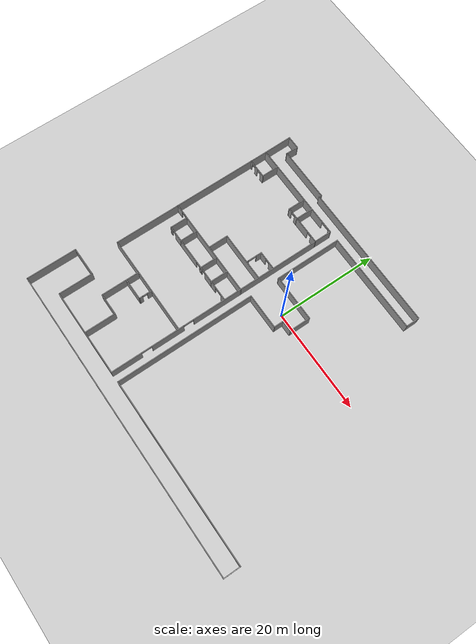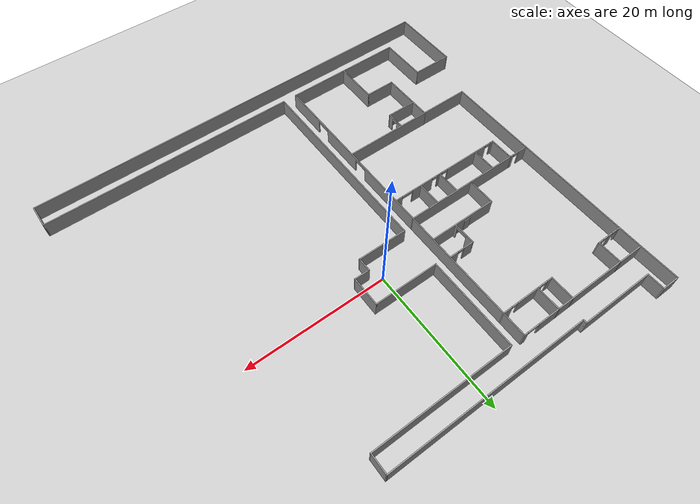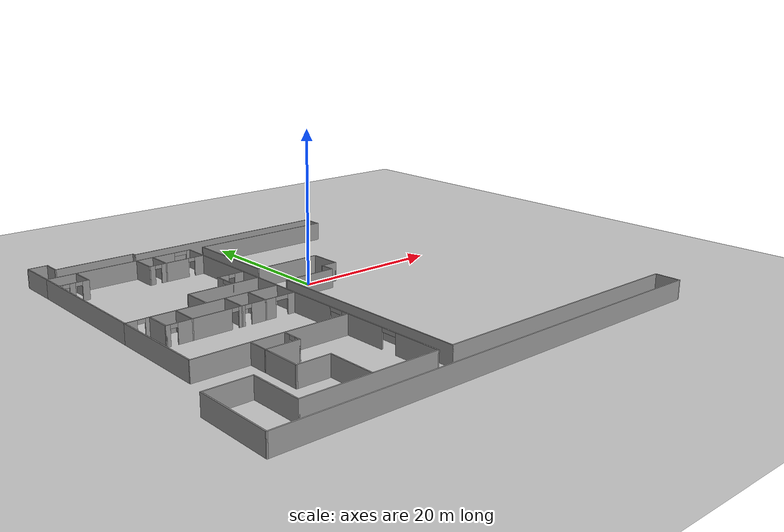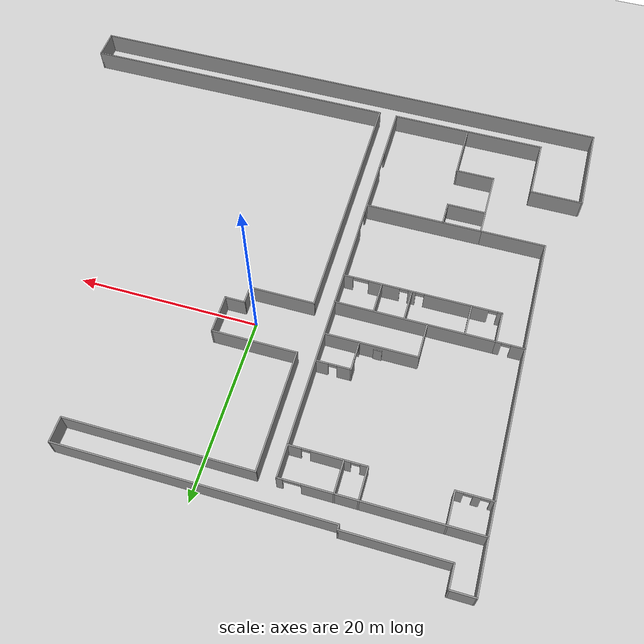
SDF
<sdf version="1.6">
 <world name="default">
  <light name="sun" type="directional">
   <pose>0 0 10 0 -0 0</pose>
   <diffuse>0.8 0.8 0.8 1</diffuse>
   <specular>0.2 0.2 0.2 1</specular>
   <attenuation>
    <range>1000</range>
    <constant>0.9</constant>
    <linear>0.01</linear>
    <quadratic>0.001</quadratic>
   </attenuation>
   <direction>-0.5 0.1 -0.9</direction>
  </light>
  <include><uri>model://ground_plane</uri></include>
  <include><uri>model://EDML</uri><name>EDML</name><pose>0 -6 0 0 0 0</pose></include>
 </world>
</sdf>

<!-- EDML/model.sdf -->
<sdf version='1.6'>
  <model name='EDML'>
    <pose frame=''>1.09948 8.70405 0 0 -0 0</pose>
    <link name='Door_14'>
      <collision name='Door_14_Collision'>
        <geometry>
          <box>
            <size>0.9 0.17 2</size>
          </box>
        </geometry>
        <pose frame=''>0 0 1 0 -0 0</pose>
      </collision>
      <visual name='Door_14_Visual'>
        <pose frame=''>0 0 1 0 -0 0</pose>
        <geometry>
          <box>
            <size>0.9 0.17 2</size>
          </box>
        </geometry>
        <material>
          <script>
            <uri>file://media/materials/scripts/gazebo.material</uri>
            <name>Gazebo/Grey</name>
          </script>
        </material>
      </visual>
      <pose frame=''>-13.2894 6.35027 0 0 -0 0</pose>
    </link>
    <link name='Wall_0'>
      <collision name='Wall_0_Collision'>
        <geometry>
          <box>
            <size>61.603 0.15 2.5</size>
          </box>
        </geometry>
        <pose frame=''>0 0 1.25 0 -0 0</pose>
      </collision>
      <visual name='Wall_0_Visual'>
        <pose frame=''>0 0 1.25 0 -0 0</pose>
        <geometry>
          <box>
            <size>61.603 0.15 2.5</size>
          </box>
        </geometry>
        <material>
          <script>
            <uri>file://media/materials/scripts/gazebo.material</uri>
            <name>Gazebo/Grey</name>
          </script>
          <ambient>1 1 1 1</ambient>
        </material>
      </visual>
      <pose frame=''>1.5e-05 -27.6701 0 0 -0 0</pose>
    </link>
    <link name='Wall_10'>
      <pose frame=''>-7.59652 -1.15055 0 0 -0 1.5708</pose>
      <visual name='Wall_10_Visual_0'>
        <pose frame=''>-20.3098 0 1.25 0 -0 0</pose>
        <geometry>
          <box>
            <size>6.1505 0.15 2.5</size>
          </box>
        </geometry>
        <material>
          <script>
            <uri>file://media/materials/scripts/gazebo.material</uri>
            <name>Gazebo/Grey</name>
          </script>
          <ambient>1 1 1 1</ambient>
        </material>
      </visual>
      <collision name='Wall_10_Collision_0'>
        <geometry>
          <box>
            <size>6.1505 0.15 2.5</size>
          </box>
        </geometry>
        <pose frame=''>-20.3098 0 1.25 0 -0 0</pose>
      </collision>
      <visual name='Wall_10_Visual_1'>
        <pose frame=''>-11.8405 0 1.25 0 -0 0</pose>
        <geometry>
          <box>
            <size>6.588 0.15 2.5</size>
          </box>
        </geometry>
        <material>
          <script>
            <uri>file://media/materials/scripts/gazebo.material</uri>
            <name>Gazebo/Grey</name>
          </script>
          <ambient>1 1 1 1</ambient>
        </material>
      </visual>
      <collision name='Wall_10_Collision_1'>
        <geometry>
          <box>
            <size>6.588 0.15 2.5</size>
          </box>
        </geometry>
        <pose frame=''>-11.8405 0 1.25 0 -0 0</pose>
      </collision>
      <visual name='Wall_10_Visual_2'>
        <pose frame=''>8.42925 0 1.25 0 -0 0</pose>
        <geometry>
          <box>
            <size>29.9115 0.15 2.5</size>
          </box>
        </geometry>
        <material>
          <script>
            <uri>file://media/materials/scripts/gazebo.material</uri>
            <name>Gazebo/Grey</name>
          </script>
          <ambient>1 1 1 1</ambient>
        </material>
      </visual>
      <collision name='Wall_10_Collision_2'>
        <geometry>
          <box>
            <size>29.9115 0.15 2.5</size>
          </box>
        </geometry>
        <pose frame=''>8.42925 0 1.25 0 -0 0</pose>
      </collision>
      <visual name='Wall_10_Visual_3'>
        <pose frame=''>-16.1845 0 2.25 0 -0 0</pose>
        <geometry>
          <box>
            <size>2.1 0.15 0.5</size>
          </box>
        </geometry>
        <material>
          <script>
            <uri>file://media/materials/scripts/gazebo.material</uri>
            <name>Gazebo/Grey</name>
          </script>
          <ambient>1 1 1 1</ambient>
        </material>
      </visual>
      <collision name='Wall_10_Collision_3'>
        <geometry>
          <box>
            <size>2.1 0.15 0.5</size>
          </box>
        </geometry>
        <pose frame=''>-16.1845 0 2.25 0 -0 0</pose>
      </collision>
      <visual name='Wall_10_Visual_4'>
        <pose frame=''>-7.53651 0 2.25 0 -0 0</pose>
        <geometry>
          <box>
            <size>2.02 0.15 0.5</size>
          </box>
        </geometry>
        <material>
          <script>
            <uri>file://media/materials/scripts/gazebo.material</uri>
            <name>Gazebo/Grey</name>
          </script>
          <ambient>1 1 1 1</ambient>
        </material>
      </visual>
      <collision name='Wall_10_Collision_4'>
        <geometry>
          <box>
            <size>2.02 0.15 0.5</size>
          </box>
        </geometry>
        <pose frame=''>-7.53651 0 2.25 0 -0 0</pose>
      </collision>
    </link>
    <link name='Wall_103'>
      <collision name='Wall_103_Collision'>
        <geometry>
          <box>
            <size>3.539 0.15 2.5</size>
          </box>
        </geometry>
        <pose frame=''>0 0 1.25 0 -0 0</pose>
      </collision>
      <visual name='Wall_103_Visual'>
        <pose frame=''>0 0 1.25 0 -0 0</pose>
        <geometry>
          <box>
            <size>3.539 0.15 2.5</size>
          </box>
        </geometry>
        <material>
          <script>
            <uri>file://media/materials/scripts/gazebo.material</uri>
            <name>Gazebo/Grey</name>
          </script>
          <ambient>1 1 1 1</ambient>
        </material>
      </visual>
      <pose frame=''>-13.181 20.4654 0 0 0 -1.5708</pose>
    </link>
    <link name='Wall_105'>
      <pose frame=''>-11.568 18.7709 0 0 -0 3.14159</pose>
      <visual name='Wall_105_Visual_0'>
        <pose frame=''>-3.3243 0 1.25 0 -0 0</pose>
        <geometry>
          <box>
            <size>1.44441 0.15 2.5</size>
          </box>
        </geometry>
        <material>
          <script>
            <uri>file://media/materials/scripts/gazebo.material</uri>
            <name>Gazebo/Grey</name>
          </script>
          <ambient>1 1 1 1</ambient>
        </material>
      </visual>
      <collision name='Wall_105_Collision_0'>
        <geometry>
          <box>
            <size>1.44441 0.15 2.5</size>
          </box>
        </geometry>
        <pose frame=''>-3.3243 0 1.25 0 -0 0</pose>
      </collision>
      <visual name='Wall_105_Visual_1'>
        <pose frame=''>0.305332 0 1.25 0 -0 0</pose>
        <geometry>
          <box>
            <size>4.01485 0.15 2.5</size>
          </box>
        </geometry>
        <material>
          <script>
            <uri>file://media/materials/scripts/gazebo.material</uri>
            <name>Gazebo/Grey</name>
          </script>
          <ambient>1 1 1 1</ambient>
        </material>
      </visual>
      <collision name='Wall_105_Collision_1'>
        <geometry>
          <box>
            <size>4.01485 0.15 2.5</size>
          </box>
        </geometry>
        <pose frame=''>0.305332 0 1.25 0 -0 0</pose>
      </collision>
      <visual name='Wall_105_Visual_2'>
        <pose frame=''>3.62963 0 1.25 0 -0 0</pose>
        <geometry>
          <box>
            <size>0.833746 0.15 2.5</size>
          </box>
        </geometry>
        <material>
          <script>
            <uri>file://media/materials/scripts/gazebo.material</uri>
            <name>Gazebo/Grey</name>
          </script>
          <ambient>1 1 1 1</ambient>
        </material>
      </visual>
      <collision name='Wall_105_Collision_2'>
        <geometry>
          <box>
            <size>0.833746 0.15 2.5</size>
          </box>
        </geometry>
        <pose frame=''>3.62963 0 1.25 0 -0 0</pose>
      </collision>
      <visual name='Wall_105_Visual_3'>
        <pose frame=''>-2.15209 0 2.25 0 -0 0</pose>
        <geometry>
          <box>
            <size>0.9 0.15 0.5</size>
          </box>
        </geometry>
        <material>
          <script>
            <uri>file://media/materials/scripts/gazebo.material</uri>
            <name>Gazebo/Grey</name>
          </script>
          <ambient>1 1 1 1</ambient>
        </material>
      </visual>
      <collision name='Wall_105_Collision_3'>
        <geometry>
          <box>
            <size>0.9 0.15 0.5</size>
          </box>
        </geometry>
        <pose frame=''>-2.15209 0 2.25 0 -0 0</pose>
      </collision>
      <visual name='Wall_105_Visual_4'>
        <pose frame=''>2.76275 0 2.25 0 -0 0</pose>
        <geometry>
          <box>
            <size>0.9 0.15 0.5</size>
          </box>
        </geometry>
        <material>
          <script>
            <uri>file://media/materials/scripts/gazebo.material</uri>
            <name>Gazebo/Grey</name>
          </script>
          <ambient>1 1 1 1</ambient>
        </material>
      </visual>
      <collision name='Wall_105_Collision_4'>
        <geometry>
          <box>
            <size>0.9 0.15 0.5</size>
          </box>
        </geometry>
        <pose frame=''>2.76275 0 2.25 0 -0 0</pose>
      </collision>
    </link>
    <link name='Wall_13'>
      <pose frame=''>-17.6295 22.1597 0 0 -0 3.14157</pose>
      <visual name='Wall_13_Visual_0'>
        <pose frame=''>-9.78149 0 1.25 0 -0 0</pose>
        <geometry>
          <box>
            <size>0.652987 0.15 2.5</size>
          </box>
        </geometry>
        <material>
          <script>
            <uri>file://media/materials/scripts/gazebo.material</uri>
            <name>Gazebo/Grey</name>
          </script>
          <ambient>1 1 1 1</ambient>
        </material>
      </visual>
      <collision name='Wall_13_Collision_0'>
        <geometry>
          <box>
            <size>0.652987 0.15 2.5</size>
          </box>
        </geometry>
        <pose frame=''>-9.78149 0 1.25 0 -0 0</pose>
      </collision>
      <visual name='Wall_13_Visual_1'>
        <pose frame=''>1.23349 0 1.25 0 -0 0</pose>
        <geometry>
          <box>
            <size>17.749 0.15 2.5</size>
          </box>
        </geometry>
        <material>
          <script>
            <uri>file://media/materials/scripts/gazebo.material</uri>
            <name>Gazebo/Grey</name>
          </script>
          <ambient>1 1 1 1</ambient>
        </material>
      </visual>
      <collision name='Wall_13_Collision_1'>
        <geometry>
          <box>
            <size>17.749 0.15 2.5</size>
          </box>
        </geometry>
        <pose frame=''>1.23349 0 1.25 0 -0 0</pose>
      </collision>
      <visual name='Wall_13_Visual_2'>
        <pose frame=''>-8.548 0 2.25 0 -0 0</pose>
        <geometry>
          <box>
            <size>1.814 0.15 0.5</size>
          </box>
        </geometry>
        <material>
          <script>
            <uri>file://media/materials/scripts/gazebo.material</uri>
            <name>Gazebo/Grey</name>
          </script>
          <ambient>1 1 1 1</ambient>
        </material>
      </visual>
      <collision name='Wall_13_Collision_2'>
        <geometry>
          <box>
            <size>1.814 0.15 0.5</size>
          </box>
        </geometry>
        <pose frame=''>-8.548 0 2.25 0 -0 0</pose>
      </collision>
    </link>
    <link name='Wall_144'>
      <collision name='Wall_144_Collision'>
        <geometry>
          <box>
            <size>3.539 0.15 2.5</size>
          </box>
        </geometry>
        <pose frame=''>0 0 1.25 0 -0 0</pose>
      </collision>
      <visual name='Wall_144_Visual'>
        <pose frame=''>0 0 1.25 0 -0 0</pose>
        <geometry>
          <box>
            <size>3.539 0.15 2.5</size>
          </box>
        </geometry>
        <material>
          <script>
            <uri>file://media/materials/scripts/gazebo.material</uri>
            <name>Gazebo/Grey</name>
          </script>
          <ambient>1 1 1 1</ambient>
        </material>
      </visual>
      <pose frame=''>-23.8745 20.4654 0 0 0 -1.5708</pose>
    </link>
    <link name='Wall_146'>
      <collision name='Wall_146_Collision'>
        <geometry>
          <box>
            <size>19.9666 0.15 2.5</size>
          </box>
        </geometry>
        <pose frame=''>0 0 1.25 0 -0 0</pose>
      </collision>
      <visual name='Wall_146_Visual'>
        <pose frame=''>0 0 1.25 0 -0 0</pose>
        <geometry>
          <box>
            <size>19.9666 0.15 2.5</size>
          </box>
        </geometry>
        <material>
          <script>
            <uri>file://media/materials/scripts/gazebo.material</uri>
            <name>Gazebo/Grey</name>
          </script>
          <ambient>1 1 1 1</ambient>
        </material>
      </visual>
      <pose frame=''>-27.6625 12.2514 0 0 -0 1.5708</pose>
    </link>
    <link name='Wall_148'>
      <collision name='Wall_148_Collision'>
        <geometry>
          <box>
            <size>9.993 0.15 2.5</size>
          </box>
        </geometry>
        <pose frame=''>0 0 1.25 0 -0 0</pose>
      </collision>
      <visual name='Wall_148_Visual'>
        <pose frame=''>0 0 1.25 0 -0 0</pose>
        <geometry>
          <box>
            <size>9.993 0.15 2.5</size>
          </box>
        </geometry>
        <material>
          <script>
            <uri>file://media/materials/scripts/gazebo.material</uri>
            <name>Gazebo/Grey</name>
          </script>
          <ambient>1 1 1 1</ambient>
        </material>
      </visual>
      <pose frame=''>-12.566 6.25695 0 0 -0 3.14159</pose>
    </link>
    <link name='Wall_150'>
      <collision name='Wall_150_Collision'>
        <geometry>
          <box>
            <size>4 0.15 2.5</size>
          </box>
        </geometry>
        <pose frame=''>0 0 1.25 0 -0 0</pose>
      </collision>
      <visual name='Wall_150_Visual'>
        <pose frame=''>0 0 1.25 0 -0 0</pose>
        <geometry>
          <box>
            <size>4 0.15 2.5</size>
          </box>
        </geometry>
        <material>
          <script>
            <uri>file://media/materials/scripts/gazebo.material</uri>
            <name>Gazebo/Grey</name>
          </script>
          <ambient>1 1 1 1</ambient>
        </material>
      </visual>
      <pose frame=''>-17.4875 4.33195 0 0 0 -1.5708</pose>
    </link>
    <link name='Wall_152'>
      <pose frame=''>-11.3135 7.85145 0 0 -0 1.5708</pose>
      <visual name='Wall_152_Visual_0'>
        <pose frame=''>-1.437 0 1.25 0 -0 0</pose>
        <geometry>
          <box>
            <size>0.464999 0.15 2.5</size>
          </box>
        </geometry>
        <material>
          <script>
            <uri>file://media/materials/scripts/gazebo.material</uri>
            <name>Gazebo/Grey</name>
          </script>
          <ambient>1 1 1 1</ambient>
        </material>
      </visual>
      <collision name='Wall_152_Collision_0'>
        <geometry>
          <box>
            <size>0.464999 0.15 2.5</size>
          </box>
        </geometry>
        <pose frame=''>-1.437 0 1.25 0 -0 0</pose>
      </collision>
      <visual name='Wall_152_Visual_1'>
        <pose frame=''>1.06 0 1.25 0 -0 0</pose>
        <geometry>
          <box>
            <size>1.219 0.15 2.5</size>
          </box>
        </geometry>
        <material>
          <script>
            <uri>file://media/materials/scripts/gazebo.material</uri>
            <name>Gazebo/Grey</name>
          </script>
          <ambient>1 1 1 1</ambient>
        </material>
      </visual>
      <collision name='Wall_152_Collision_1'>
        <geometry>
          <box>
            <size>1.219 0.15 2.5</size>
          </box>
        </geometry>
        <pose frame=''>1.06 0 1.25 0 -0 0</pose>
      </collision>
      <visual name='Wall_152_Visual_2'>
        <pose frame=''>-0.377001 0 2.25 0 -0 0</pose>
        <geometry>
          <box>
            <size>1.655 0.15 0.5</size>
          </box>
        </geometry>
        <material>
          <script>
            <uri>file://media/materials/scripts/gazebo.material</uri>
            <name>Gazebo/Grey</name>
          </script>
          <ambient>1 1 1 1</ambient>
        </material>
      </visual>
      <collision name='Wall_152_Collision_2'>
        <geometry>
          <box>
            <size>1.655 0.15 0.5</size>
          </box>
        </geometry>
        <pose frame=''>-0.377001 0 2.25 0 -0 0</pose>
      </collision>
    </link>
    <link name='Wall_154'>
      <pose frame=''>-9.51348 9.44595 0 0 -0 0</pose>
      <visual name='Wall_154_Visual_0'>
        <pose frame=''>-1.09506 0 1.25 0 -0 0</pose>
        <geometry>
          <box>
            <size>1.55988 0.15 2.5</size>
          </box>
        </geometry>
        <material>
          <script>
            <uri>file://media/materials/scripts/gazebo.material</uri>
            <name>Gazebo/Grey</name>
          </script>
          <ambient>1 1 1 1</ambient>
        </material>
      </visual>
      <collision name='Wall_154_Collision_0'>
        <geometry>
          <box>
            <size>1.55988 0.15 2.5</size>
          </box>
        </geometry>
        <pose frame=''>-1.09506 0 1.25 0 -0 0</pose>
      </collision>
      <visual name='Wall_154_Visual_1'>
        <pose frame=''>1.22994 0 1.25 0 -0 0</pose>
        <geometry>
          <box>
            <size>1.29012 0.15 2.5</size>
          </box>
        </geometry>
        <material>
          <script>
            <uri>file://media/materials/scripts/gazebo.material</uri>
            <name>Gazebo/Grey</name>
          </script>
          <ambient>1 1 1 1</ambient>
        </material>
      </visual>
      <collision name='Wall_154_Collision_1'>
        <geometry>
          <box>
            <size>1.29012 0.15 2.5</size>
          </box>
        </geometry>
        <pose frame=''>1.22994 0 1.25 0 -0 0</pose>
      </collision>
      <visual name='Wall_154_Visual_2'>
        <pose frame=''>0.134882 0 2.25 0 -0 0</pose>
        <geometry>
          <box>
            <size>0.9 0.15 0.5</size>
          </box>
        </geometry>
        <material>
          <script>
            <uri>file://media/materials/scripts/gazebo.material</uri>
            <name>Gazebo/Grey</name>
          </script>
          <ambient>1 1 1 1</ambient>
        </material>
      </visual>
      <collision name='Wall_154_Collision_2'>
        <geometry>
          <box>
            <size>0.9 0.15 0.5</size>
          </box>
        </geometry>
        <pose frame=''>0.134882 0 2.25 0 -0 0</pose>
      </collision>
    </link>
    <link name='Wall_156'>
      <pose frame=''>-25.7685 18.7709 0 0 -0 3.14159</pose>
      <visual name='Wall_156_Visual_0'>
        <pose frame=''>-1.52296 0 1.25 0 -0 0</pose>
        <geometry>
          <box>
            <size>0.892081 0.15 2.5</size>
          </box>
        </geometry>
        <material>
          <script>
            <uri>file://media/materials/scripts/gazebo.material</uri>
            <name>Gazebo/Grey</name>
          </script>
          <ambient>1 1 1 1</ambient>
        </material>
      </visual>
      <collision name='Wall_156_Collision_0'>
        <geometry>
          <box>
            <size>0.892081 0.15 2.5</size>
          </box>
        </geometry>
        <pose frame=''>-1.52296 0 1.25 0 -0 0</pose>
      </collision>
      <visual name='Wall_156_Visual_1'>
        <pose frame=''>0.192223 0 1.25 0 -0 0</pose>
        <geometry>
          <box>
            <size>0.738283 0.15 2.5</size>
          </box>
        </geometry>
        <material>
          <script>
            <uri>file://media/materials/scripts/gazebo.material</uri>
            <name>Gazebo/Grey</name>
          </script>
          <ambient>1 1 1 1</ambient>
        </material>
      </visual>
      <collision name='Wall_156_Collision_1'>
        <geometry>
          <box>
            <size>0.738283 0.15 2.5</size>
          </box>
        </geometry>
        <pose frame=''>0.192223 0 1.25 0 -0 0</pose>
      </collision>
      <visual name='Wall_156_Visual_2'>
        <pose frame=''>1.71518 0 1.25 0 -0 0</pose>
        <geometry>
          <box>
            <size>0.507636 0.15 2.5</size>
          </box>
        </geometry>
        <material>
          <script>
            <uri>file://media/materials/scripts/gazebo.material</uri>
            <name>Gazebo/Grey</name>
          </script>
          <ambient>1 1 1 1</ambient>
        </material>
      </visual>
      <collision name='Wall_156_Collision_2'>
        <geometry>
          <box>
            <size>0.507636 0.15 2.5</size>
          </box>
        </geometry>
        <pose frame=''>1.71518 0 1.25 0 -0 0</pose>
      </collision>
      <visual name='Wall_156_Visual_3'>
        <pose frame=''>-0.626919 0 2.25 0 -0 0</pose>
        <geometry>
          <box>
            <size>0.9 0.15 0.5</size>
          </box>
        </geometry>
        <material>
          <script>
            <uri>file://media/materials/scripts/gazebo.material</uri>
            <name>Gazebo/Grey</name>
          </script>
          <ambient>1 1 1 1</ambient>
        </material>
      </visual>
      <collision name='Wall_156_Collision_3'>
        <geometry>
          <box>
            <size>0.9 0.15 0.5</size>
          </box>
        </geometry>
        <pose frame=''>-0.626919 0 2.25 0 -0 0</pose>
      </collision>
      <visual name='Wall_156_Visual_4'>
        <pose frame=''>1.01136 0 2.25 0 -0 0</pose>
        <geometry>
          <box>
            <size>0.9 0.15 0.5</size>
          </box>
        </geometry>
        <material>
          <script>
            <uri>file://media/materials/scripts/gazebo.material</uri>
            <name>Gazebo/Grey</name>
          </script>
          <ambient>1 1 1 1</ambient>
        </material>
      </visual>
      <collision name='Wall_156_Collision_4'>
        <geometry>
          <box>
            <size>0.9 0.15 0.5</size>
          </box>
        </geometry>
        <pose frame=''>1.01136 0 2.25 0 -0 0</pose>
      </collision>
    </link>
    <link name='Wall_160'>
      <collision name='Wall_160_Collision'>
        <geometry>
          <box>
            <size>9.23 0.15 2.5</size>
          </box>
        </geometry>
        <pose frame=''>0 0 1.25 0 -0 0</pose>
      </collision>
      <visual name='Wall_160_Visual'>
        <pose frame=''>0 0 1.25 0 -0 0</pose>
        <geometry>
          <box>
            <size>9.23 0.15 2.5</size>
          </box>
        </geometry>
        <material>
          <script>
            <uri>file://media/materials/scripts/gazebo.material</uri>
            <name>Gazebo/Grey</name>
          </script>
          <ambient>1 1 1 1</ambient>
        </material>
      </visual>
      <pose frame=''>-0.946484 9.13295 0 0 -0 0</pose>
    </link>
    <link name='Wall_161'>
      <collision name='Wall_161_Collision'>
        <geometry>
          <box>
            <size>4.282 0.15 2.5</size>
          </box>
        </geometry>
        <pose frame=''>0 0 1.25 0 -0 0</pose>
      </collision>
      <visual name='Wall_161_Visual'>
        <pose frame=''>0 0 1.25 0 -0 0</pose>
        <geometry>
          <box>
            <size>4.282 0.15 2.5</size>
          </box>
        </geometry>
        <material>
          <script>
            <uri>file://media/materials/scripts/gazebo.material</uri>
            <name>Gazebo/Grey</name>
          </script>
          <ambient>1 1 1 1</ambient>
        </material>
      </visual>
      <pose frame=''>3.59352 7.06695 0 0 0 -1.5708</pose>
    </link>
    <link name='Wall_162'>
      <collision name='Wall_162_Collision'>
        <geometry>
          <box>
            <size>2.258 0.15 2.5</size>
          </box>
        </geometry>
        <pose frame=''>0 0 1.25 0 -0 0</pose>
      </collision>
      <visual name='Wall_162_Visual'>
        <pose frame=''>0 0 1.25 0 -0 0</pose>
        <geometry>
          <box>
            <size>2.258 0.15 2.5</size>
          </box>
        </geometry>
        <material>
          <script>
            <uri>file://media/materials/scripts/gazebo.material</uri>
            <name>Gazebo/Grey</name>
          </script>
          <ambient>1 1 1 1</ambient>
        </material>
      </visual>
      <pose frame=''>2.53952 5.00095 0 0 -0 3.14159</pose>
    </link>
    <link name='Wall_163'>
      <collision name='Wall_163_Collision'>
        <geometry>
          <box>
            <size>2.019 0.15 2.5</size>
          </box>
        </geometry>
        <pose frame=''>0 0 1.25 0 -0 0</pose>
      </collision>
      <visual name='Wall_163_Visual'>
        <pose frame=''>0 0 1.25 0 -0 0</pose>
        <geometry>
          <box>
            <size>2.019 0.15 2.5</size>
          </box>
        </geometry>
        <material>
          <script>
            <uri>file://media/materials/scripts/gazebo.material</uri>
            <name>Gazebo/Grey</name>
          </script>
          <ambient>1 1 1 1</ambient>
        </material>
      </visual>
      <pose frame=''>1.48552 4.06645 0 0 0 -1.5708</pose>
    </link>
    <link name='Wall_164'>
      <collision name='Wall_164_Collision'>
        <geometry>
          <box>
            <size>7.177 0.15 2.5</size>
          </box>
        </geometry>
        <pose frame=''>0 0 1.25 0 -0 0</pose>
      </collision>
      <visual name='Wall_164_Visual'>
        <pose frame=''>0 0 1.25 0 -0 0</pose>
        <geometry>
          <box>
            <size>7.177 0.15 2.5</size>
          </box>
        </geometry>
        <material>
          <script>
            <uri>file://media/materials/scripts/gazebo.material</uri>
            <name>Gazebo/Grey</name>
          </script>
          <ambient>1 1 1 1</ambient>
        </material>
      </visual>
      <pose frame=''>-2.02798 3.13195 0 0 -0 3.14159</pose>
    </link>
    <link name='Wall_166'>
      <collision name='Wall_166_Collision'>
        <geometry>
          <box>
            <size>27.742 0.15 2.5</size>
          </box>
        </geometry>
        <pose frame=''>0 0 1.25 0 -0 0</pose>
      </collision>
      <visual name='Wall_166_Visual'>
        <pose frame=''>0 0 1.25 0 -0 0</pose>
        <geometry>
          <box>
            <size>27.742 0.15 2.5</size>
          </box>
        </geometry>
        <material>
          <script>
            <uri>file://media/materials/scripts/gazebo.material</uri>
            <name>Gazebo/Grey</name>
          </script>
          <ambient>1 1 1 1</ambient>
        </material>
      </visual>
      <pose frame=''>-5.54148 -10.6641 0 0 0 -1.5708</pose>
    </link>
    <link name='Wall_167'>
      <collision name='Wall_167_Collision'>
        <geometry>
          <box>
            <size>36.418 0.15 2.5</size>
          </box>
        </geometry>
        <pose frame=''>0 0 1.25 0 -0 0</pose>
      </collision>
      <visual name='Wall_167_Visual'>
        <pose frame=''>0 0 1.25 0 -0 0</pose>
        <geometry>
          <box>
            <size>36.418 0.15 2.5</size>
          </box>
        </geometry>
        <material>
          <script>
            <uri>file://media/materials/scripts/gazebo.material</uri>
            <name>Gazebo/Grey</name>
          </script>
          <ambient>1 1 1 1</ambient>
        </material>
      </visual>
      <pose frame=''>12.5925 -24.4601 0 0 -0 0</pose>
    </link>
    <link name='Wall_168'>
      <collision name='Wall_168_Collision'>
        <geometry>
          <box>
            <size>3.36 0.15 2.5</size>
          </box>
        </geometry>
        <pose frame=''>0 0 1.25 0 -0 0</pose>
      </collision>
      <visual name='Wall_168_Visual'>
        <pose frame=''>0 0 1.25 0 -0 0</pose>
        <geometry>
          <box>
            <size>3.36 0.15 2.5</size>
          </box>
        </geometry>
        <material>
          <script>
            <uri>file://media/materials/scripts/gazebo.material</uri>
            <name>Gazebo/Grey</name>
          </script>
          <ambient>1 1 1 1</ambient>
        </material>
      </visual>
      <pose frame=''>30.7265 -26.0651 0 0 0 -1.5708</pose>
    </link>
    <link name='Wall_19'>
      <collision name='Wall_19_Collision'>
        <geometry>
          <box>
            <size>0.624 0.15 2.5</size>
          </box>
        </geometry>
        <pose frame=''>0 0 1.25 0 -0 0</pose>
      </collision>
      <visual name='Wall_19_Visual'>
        <pose frame=''>0 0 1.25 0 -0 0</pose>
        <geometry>
          <box>
            <size>0.624 0.15 2.5</size>
          </box>
        </geometry>
        <material>
          <script>
            <uri>file://media/materials/scripts/gazebo.material</uri>
            <name>Gazebo/Grey</name>
          </script>
          <ambient>1 1 1 1</ambient>
        </material>
      </visual>
      <pose frame=''>-14.4105 25.0329 0 0 0 -1.5708</pose>
    </link>
    <link name='Wall_2'>
      <collision name='Wall_2_Collision'>
        <geometry>
          <box>
            <size>10.14 0.15 2.5</size>
          </box>
        </geometry>
        <pose frame=''>0 0 1.25 0 -0 0</pose>
      </collision>
      <visual name='Wall_2_Visual'>
        <pose frame=''>0 0 1.25 0 -0 0</pose>
        <geometry>
          <box>
            <size>10.14 0.15 2.5</size>
          </box>
        </geometry>
        <material>
          <script>
            <uri>file://media/materials/scripts/gazebo.material</uri>
            <name>Gazebo/Grey</name>
          </script>
          <ambient>1 1 1 1</ambient>
        </material>
      </visual>
      <pose frame=''>-30.7265 -22.6753 0 0 -0 1.5708</pose>
    </link>
    <link name='Wall_20'>
      <collision name='Wall_20_Collision'>
        <geometry>
          <box>
            <size>28.939 0.15 2.5</size>
          </box>
        </geometry>
        <pose frame=''>0 0 1.25 0 -0 0</pose>
      </collision>
      <visual name='Wall_20_Visual'>
        <pose frame=''>0 0 1.25 0 -0 0</pose>
        <geometry>
          <box>
            <size>28.939 0.15 2.5</size>
          </box>
        </geometry>
        <material>
          <script>
            <uri>file://media/materials/scripts/gazebo.material</uri>
            <name>Gazebo/Grey</name>
          </script>
          <ambient>1 1 1 1</ambient>
        </material>
      </visual>
      <pose frame=''>-0.015984 24.7959 0 0 -0 0</pose>
    </link>
    <link name='Wall_21'>
      <collision name='Wall_21_Collision'>
        <geometry>
          <box>
            <size>2.786 0.15 2.5</size>
          </box>
        </geometry>
        <pose frame=''>0 0 1.25 0 -0 0</pose>
      </collision>
      <visual name='Wall_21_Visual'>
        <pose frame=''>0 0 1.25 0 -0 0</pose>
        <geometry>
          <box>
            <size>2.786 0.15 2.5</size>
          </box>
        </geometry>
        <material>
          <script>
            <uri>file://media/materials/scripts/gazebo.material</uri>
            <name>Gazebo/Grey</name>
          </script>
          <ambient>1 1 1 1</ambient>
        </material>
      </visual>
      <pose frame=''>14.3785 23.4779 0 0 0 -1.5708</pose>
    </link>
    <link name='Wall_22'>
      <collision name='Wall_22_Collision'>
        <geometry>
          <box>
            <size>20.07 0.15 2.5</size>
          </box>
        </geometry>
        <pose frame=''>0 0 1.25 0 -0 0</pose>
      </collision>
      <visual name='Wall_22_Visual'>
        <pose frame=''>0 0 1.25 0 -0 0</pose>
        <geometry>
          <box>
            <size>20.07 0.15 2.5</size>
          </box>
        </geometry>
        <material>
          <script>
            <uri>file://media/materials/scripts/gazebo.material</uri>
            <name>Gazebo/Grey</name>
          </script>
          <ambient>1 1 1 1</ambient>
        </material>
      </visual>
      <pose frame=''>4.41852 22.1599 0 0 -0 3.14159</pose>
    </link>
    <link name='Wall_23'>
      <collision name='Wall_23_Collision'>
        <geometry>
          <box>
            <size>13.177 0.15 2.5</size>
          </box>
        </geometry>
        <pose frame=''>0 0 1.25 0 -0 0</pose>
      </collision>
      <visual name='Wall_23_Visual'>
        <pose frame=''>0 0 1.25 0 -0 0</pose>
        <geometry>
          <box>
            <size>13.177 0.15 2.5</size>
          </box>
        </geometry>
        <material>
          <script>
            <uri>file://media/materials/scripts/gazebo.material</uri>
            <name>Gazebo/Grey</name>
          </script>
          <ambient>1 1 1 1</ambient>
        </material>
      </visual>
      <pose frame=''>-5.54148 15.6464 0 0 0 -1.5708</pose>
    </link>
    <link name='Wall_25'>
      <collision name='Wall_25_Collision'>
        <geometry>
          <box>
            <size>5.66 0.15 2.5</size>
          </box>
        </geometry>
        <pose frame=''>0 0 1.25 0 -0 0</pose>
      </collision>
      <visual name='Wall_25_Visual'>
        <pose frame=''>0 0 1.25 0 -0 0</pose>
        <geometry>
          <box>
            <size>5.66 0.15 2.5</size>
          </box>
        </geometry>
        <material>
          <script>
            <uri>file://media/materials/scripts/gazebo.material</uri>
            <name>Gazebo/Grey</name>
          </script>
          <ambient>1 1 1 1</ambient>
        </material>
      </visual>
      <pose frame=''>-27.6895 24.9147 0 0 -0 1.5806</pose>
    </link>
    <link name='Wall_27'>
      <collision name='Wall_27_Collision'>
        <geometry>
          <box>
            <size>2.67 0.15 2.5</size>
          </box>
        </geometry>
        <pose frame=''>0 0 1.25 0 -0 0</pose>
      </collision>
      <visual name='Wall_27_Visual'>
        <pose frame=''>0 0 1.25 0 -0 0</pose>
        <geometry>
          <box>
            <size>2.67 0.15 2.5</size>
          </box>
        </geometry>
        <material>
          <script>
            <uri>file://media/materials/scripts/gazebo.material</uri>
            <name>Gazebo/Grey</name>
          </script>
          <ambient>1 1 1 1</ambient>
        </material>
      </visual>
      <pose frame=''>-26.4565 27.6695 0 0 -0 0</pose>
    </link>
    <link name='Wall_31'>
      <collision name='Wall_31_Collision'>
        <geometry>
          <box>
            <size>2.55 0.15 2.5</size>
          </box>
        </geometry>
        <pose frame=''>0 0 1.25 0 -0 0</pose>
      </collision>
      <visual name='Wall_31_Visual'>
        <pose frame=''>0 0 1.25 0 -0 0</pose>
        <geometry>
          <box>
            <size>2.55 0.15 2.5</size>
          </box>
        </geometry>
        <material>
          <script>
            <uri>file://media/materials/scripts/gazebo.material</uri>
            <name>Gazebo/Grey</name>
          </script>
          <ambient>1 1 1 1</ambient>
        </material>
      </visual>
      <pose frame=''>-25.1965 26.4697 0 0 0 -1.57078</pose>
    </link>
    <link name='Wall_32'>
      <collision name='Wall_32_Collision'>
        <geometry>
          <box>
            <size>10.936 0.15 2.5</size>
          </box>
        </geometry>
        <pose frame=''>0 0 1.25 0 -0 0</pose>
      </collision>
      <visual name='Wall_32_Visual'>
        <pose frame=''>0 0 1.25 0 -0 0</pose>
        <geometry>
          <box>
            <size>10.936 0.15 2.5</size>
          </box>
        </geometry>
        <material>
          <script>
            <uri>file://media/materials/scripts/gazebo.material</uri>
            <name>Gazebo/Grey</name>
          </script>
          <ambient>1 1 1 1</ambient>
        </material>
      </visual>
      <pose frame=''>-19.8035 25.2699 0 0 -0 0</pose>
    </link>
    <link name='Wall_4'>
      <collision name='Wall_4_Collision'>
        <geometry>
          <box>
            <size>5.88 0.15 2.5</size>
          </box>
        </geometry>
        <pose frame=''>0 0 1.25 0 -0 0</pose>
      </collision>
      <visual name='Wall_4_Visual'>
        <pose frame=''>0 0 1.25 0 -0 0</pose>
        <geometry>
          <box>
            <size>5.88 0.15 2.5</size>
          </box>
        </geometry>
        <material>
          <script>
            <uri>file://media/materials/scripts/gazebo.material</uri>
            <name>Gazebo/Grey</name>
          </script>
          <ambient>1 1 1 1</ambient>
        </material>
      </visual>
      <pose frame=''>-27.8615 -17.6805 0 0 -0 0</pose>
    </link>
    <link name='Wall_57'>
      <collision name='Wall_57_Collision'>
        <geometry>
          <box>
            <size>13.087 0.15 2.5</size>
          </box>
        </geometry>
        <pose frame=''>0 0 1.25 0 -0 0</pose>
      </collision>
      <visual name='Wall_57_Visual'>
        <pose frame=''>0 0 1.25 0 -0 0</pose>
        <geometry>
          <box>
            <size>13.087 0.15 2.5</size>
          </box>
        </geometry>
        <material>
          <script>
            <uri>file://media/materials/scripts/gazebo.material</uri>
            <name>Gazebo/Grey</name>
          </script>
          <ambient>1 1 1 1</ambient>
        </material>
      </visual>
      <pose frame=''>-14.0803 -10.7286 0 0 -0 3.14159</pose>
    </link>
    <link name='Wall_59'>
      <collision name='Wall_59_Collision'>
        <geometry>
          <box>
            <size>7.74 0.15 2.5</size>
          </box>
        </geometry>
        <pose frame=''>0 0 1.25 0 -0 0</pose>
      </collision>
      <visual name='Wall_59_Visual'>
        <pose frame=''>0 0 1.25 0 -0 0</pose>
        <geometry>
          <box>
            <size>7.74 0.15 2.5</size>
          </box>
        </geometry>
        <material>
          <script>
            <uri>file://media/materials/scripts/gazebo.material</uri>
            <name>Gazebo/Grey</name>
          </script>
          <ambient>1 1 1 1</ambient>
        </material>
      </visual>
      <pose frame=''>-20.5395 -14.5349 0 0 -0 1.5708</pose>
    </link>
    <link name='Wall_6'>
      <collision name='Wall_6_Collision'>
        <geometry>
          <box>
            <size>6.93 0.15 2.5</size>
          </box>
        </geometry>
        <pose frame=''>0 0 1.25 0 -0 0</pose>
      </collision>
      <visual name='Wall_6_Visual'>
        <pose frame=''>0 0 1.25 0 -0 0</pose>
        <geometry>
          <box>
            <size>6.93 0.15 2.5</size>
          </box>
        </geometry>
        <material>
          <script>
            <uri>file://media/materials/scripts/gazebo.material</uri>
            <name>Gazebo/Grey</name>
          </script>
          <ambient>1 1 1 1</ambient>
        </material>
      </visual>
      <pose frame=''>-24.9965 -21.0705 0 0 0 -1.5708</pose>
    </link>
    <link name='Wall_61'>
      <collision name='Wall_61_Collision'>
        <geometry>
          <box>
            <size>4.414 0.15 2.5</size>
          </box>
        </geometry>
        <pose frame=''>0 0 1.25 0 -0 0</pose>
      </collision>
      <visual name='Wall_61_Visual'>
        <pose frame=''>0 0 1.25 0 -0 0</pose>
        <geometry>
          <box>
            <size>4.414 0.15 2.5</size>
          </box>
        </geometry>
        <material>
          <script>
            <uri>file://media/materials/scripts/gazebo.material</uri>
            <name>Gazebo/Grey</name>
          </script>
          <ambient>1 1 1 1</ambient>
        </material>
      </visual>
      <pose frame=''>-18.4075 -18.3297 0 0 -0 0</pose>
    </link>
    <link name='Wall_64'>
      <collision name='Wall_64_Collision'>
        <geometry>
          <box>
            <size>6.25 0.15 2.5</size>
          </box>
        </geometry>
        <pose frame=''>0 0 1.25 0 -0 0</pose>
      </collision>
      <visual name='Wall_64_Visual'>
        <pose frame=''>0 0 1.25 0 -0 0</pose>
        <geometry>
          <box>
            <size>6.25 0.15 2.5</size>
          </box>
        </geometry>
        <material>
          <script>
            <uri>file://media/materials/scripts/gazebo.material</uri>
            <name>Gazebo/Grey</name>
          </script>
          <ambient>1 1 1 1</ambient>
        </material>
      </visual>
      <pose frame=''>-16.2755 -21.3797 0 0 0 -1.5708</pose>
    </link>
    <link name='Wall_68'>
      <pose frame=''>-16.2825 -12.0341 0 0 0 -1.5708</pose>
      <visual name='Wall_68_Visual_0'>
        <pose frame=''>-0.844009 0 1.25 0 -0 0</pose>
        <geometry>
          <box>
            <size>1.00798 0.15 2.5</size>
          </box>
        </geometry>
        <material>
          <script>
            <uri>file://media/materials/scripts/gazebo.material</uri>
            <name>Gazebo/Grey</name>
          </script>
          <ambient>1 1 1 1</ambient>
        </material>
      </visual>
      <collision name='Wall_68_Collision_0'>
        <geometry>
          <box>
            <size>1.00798 0.15 2.5</size>
          </box>
        </geometry>
        <pose frame=''>-0.844009 0 1.25 0 -0 0</pose>
      </collision>
      <visual name='Wall_68_Visual_1'>
        <pose frame=''>0.958991 0 1.25 0 -0 0</pose>
        <geometry>
          <box>
            <size>0.778018 0.15 2.5</size>
          </box>
        </geometry>
        <material>
          <script>
            <uri>file://media/materials/scripts/gazebo.material</uri>
            <name>Gazebo/Grey</name>
          </script>
          <ambient>1 1 1 1</ambient>
        </material>
      </visual>
      <collision name='Wall_68_Collision_1'>
        <geometry>
          <box>
            <size>0.778018 0.15 2.5</size>
          </box>
        </geometry>
        <pose frame=''>0.958991 0 1.25 0 -0 0</pose>
      </collision>
      <visual name='Wall_68_Visual_2'>
        <pose frame=''>0.114982 0 2.25 0 -0 0</pose>
        <geometry>
          <box>
            <size>0.91 0.15 0.5</size>
          </box>
        </geometry>
        <material>
          <script>
            <uri>file://media/materials/scripts/gazebo.material</uri>
            <name>Gazebo/Grey</name>
          </script>
          <ambient>1 1 1 1</ambient>
        </material>
      </visual>
      <collision name='Wall_68_Collision_2'>
        <geometry>
          <box>
            <size>0.91 0.15 0.5</size>
          </box>
        </geometry>
        <pose frame=''>0.114982 0 2.25 0 -0 0</pose>
      </collision>
    </link>
    <link name='Wall_70'>
      <collision name='Wall_70_Collision'>
        <geometry>
          <box>
            <size>4.412 0.15 2.5</size>
          </box>
        </geometry>
        <pose frame=''>0 0 1.25 0 -0 0</pose>
      </collision>
      <visual name='Wall_70_Visual'>
        <pose frame=''>0 0 1.25 0 -0 0</pose>
        <geometry>
          <box>
            <size>4.412 0.15 2.5</size>
          </box>
        </geometry>
        <material>
          <script>
            <uri>file://media/materials/scripts/gazebo.material</uri>
            <name>Gazebo/Grey</name>
          </script>
          <ambient>1 1 1 1</ambient>
        </material>
      </visual>
      <pose frame=''>-18.4125 -13.3071 0 0 -0 0</pose>
    </link>
    <link name='Wall_75'>
      <collision name='Wall_75_Collision'>
        <geometry>
          <box>
            <size>7.273 0.15 2.5</size>
          </box>
        </geometry>
        <pose frame=''>0 0 1.25 0 -0 0</pose>
      </collision>
      <visual name='Wall_75_Visual'>
        <pose frame=''>0 0 1.25 0 -0 0</pose>
        <geometry>
          <box>
            <size>7.273 0.15 2.5</size>
          </box>
        </geometry>
        <material>
          <script>
            <uri>file://media/materials/scripts/gazebo.material</uri>
            <name>Gazebo/Grey</name>
          </script>
          <ambient>1 1 1 1</ambient>
        </material>
      </visual>
      <pose frame=''>-24.101 -10.7401 0 0 -0 3.14159</pose>
    </link>
    <link name='Wall_77'>
      <collision name='Wall_77_Collision'>
        <geometry>
          <box>
            <size>13.233 0.15 2.5</size>
          </box>
        </geometry>
        <pose frame=''>0 0 1.25 0 -0 0</pose>
      </collision>
      <visual name='Wall_77_Visual'>
        <pose frame=''>0 0 1.25 0 -0 0</pose>
        <geometry>
          <box>
            <size>13.233 0.15 2.5</size>
          </box>
        </geometry>
        <material>
          <script>
            <uri>file://media/materials/scripts/gazebo.material</uri>
            <name>Gazebo/Grey</name>
          </script>
          <ambient>1 1 1 1</ambient>
        </material>
      </visual>
      <pose frame=''>-27.6625 -4.19855 0 0 -0 1.5708</pose>
    </link>
    <link name='Wall_79'>
      <pose frame=''>-26.1745 2.34295 0 0 -0 0</pose>
      <visual name='Wall_79_Visual_0'>
        <pose frame=''>-0.801238 0 1.25 0 -0 0</pose>
        <geometry>
          <box>
            <size>1.52352 0.15 2.5</size>
          </box>
        </geometry>
        <material>
          <script>
            <uri>file://media/materials/scripts/gazebo.material</uri>
            <name>Gazebo/Grey</name>
          </script>
          <ambient>1 1 1 1</ambient>
        </material>
      </visual>
      <collision name='Wall_79_Collision_0'>
        <geometry>
          <box>
            <size>1.52352 0.15 2.5</size>
          </box>
        </geometry>
        <pose frame=''>-0.801238 0 1.25 0 -0 0</pose>
      </collision>
      <visual name='Wall_79_Visual_1'>
        <pose frame=''>1.24676 0 1.25 0 -0 0</pose>
        <geometry>
          <box>
            <size>0.632476 0.15 2.5</size>
          </box>
        </geometry>
        <material>
          <script>
            <uri>file://media/materials/scripts/gazebo.material</uri>
            <name>Gazebo/Grey</name>
          </script>
          <ambient>1 1 1 1</ambient>
        </material>
      </visual>
      <collision name='Wall_79_Collision_1'>
        <geometry>
          <box>
            <size>0.632476 0.15 2.5</size>
          </box>
        </geometry>
        <pose frame=''>1.24676 0 1.25 0 -0 0</pose>
      </collision>
      <visual name='Wall_79_Visual_2'>
        <pose frame=''>0.445524 0 2.25 0 -0 0</pose>
        <geometry>
          <box>
            <size>0.97 0.15 0.5</size>
          </box>
        </geometry>
        <material>
          <script>
            <uri>file://media/materials/scripts/gazebo.material</uri>
            <name>Gazebo/Grey</name>
          </script>
          <ambient>1 1 1 1</ambient>
        </material>
      </visual>
      <collision name='Wall_79_Collision_2'>
        <geometry>
          <box>
            <size>0.97 0.15 0.5</size>
          </box>
        </geometry>
        <pose frame=''>0.445524 0 2.25 0 -0 0</pose>
      </collision>
    </link>
    <link name='Wall_8'>
      <collision name='Wall_8_Collision'>
        <geometry>
          <box>
            <size>17.55 0.15 2.5</size>
          </box>
        </geometry>
        <pose frame=''>0 0 1.25 0 -0 0</pose>
      </collision>
      <visual name='Wall_8_Visual'>
        <pose frame=''>0 0 1.25 0 -0 0</pose>
        <geometry>
          <box>
            <size>17.55 0.15 2.5</size>
          </box>
        </geometry>
        <material>
          <script>
            <uri>file://media/materials/scripts/gazebo.material</uri>
            <name>Gazebo/Grey</name>
          </script>
          <ambient>1 1 1 1</ambient>
        </material>
      </visual>
      <pose frame=''>-16.2965 -24.4605 0 0 -0 0</pose>
    </link>
    <link name='Wall_81'>
      <collision name='Wall_81_Collision'>
        <geometry>
          <box>
            <size>3.592 0.15 2.5</size>
          </box>
        </geometry>
        <pose frame=''>0 0 1.25 0 -0 0</pose>
      </collision>
      <visual name='Wall_81_Visual'>
        <pose frame=''>0 0 1.25 0 -0 0</pose>
        <geometry>
          <box>
            <size>3.592 0.15 2.5</size>
          </box>
        </geometry>
        <material>
          <script>
            <uri>file://media/materials/scripts/gazebo.material</uri>
            <name>Gazebo/Grey</name>
          </script>
          <ambient>1 1 1 1</ambient>
        </material>
      </visual>
      <pose frame=''>-24.6865 0.621948 0 0 0 -1.5708</pose>
    </link>
    <link name='Wall_83'>
      <pose frame=''>-16.1589 -1.09905 0 0 -0 0</pose>
      <visual name='Wall_83_Visual_0'>
        <pose frame=''>-8.31306 0 1.25 0 -0 0</pose>
        <geometry>
          <box>
            <size>0.579128 0.15 2.5</size>
          </box>
        </geometry>
        <material>
          <script>
            <uri>file://media/materials/scripts/gazebo.material</uri>
            <name>Gazebo/Grey</name>
          </script>
          <ambient>1 1 1 1</ambient>
        </material>
      </visual>
      <collision name='Wall_83_Collision_0'>
        <geometry>
          <box>
            <size>0.579128 0.15 2.5</size>
          </box>
        </geometry>
        <pose frame=''>-8.31306 0 1.25 0 -0 0</pose>
      </collision>
      <visual name='Wall_83_Visual_1'>
        <pose frame=''>-3.66839 0 1.25 0 -0 0</pose>
        <geometry>
          <box>
            <size>6.88021 0.15 2.5</size>
          </box>
        </geometry>
        <material>
          <script>
            <uri>file://media/materials/scripts/gazebo.material</uri>
            <name>Gazebo/Grey</name>
          </script>
          <ambient>1 1 1 1</ambient>
        </material>
      </visual>
      <collision name='Wall_83_Collision_1'>
        <geometry>
          <box>
            <size>6.88021 0.15 2.5</size>
          </box>
        </geometry>
        <pose frame=''>-3.66839 0 1.25 0 -0 0</pose>
      </collision>
      <visual name='Wall_83_Visual_2'>
        <pose frame=''>1.09349 0 1.25 0 -0 0</pose>
        <geometry>
          <box>
            <size>0.813553 0.15 2.5</size>
          </box>
        </geometry>
        <material>
          <script>
            <uri>file://media/materials/scripts/gazebo.material</uri>
            <name>Gazebo/Grey</name>
          </script>
          <ambient>1 1 1 1</ambient>
        </material>
      </visual>
      <collision name='Wall_83_Collision_2'>
        <geometry>
          <box>
            <size>0.813553 0.15 2.5</size>
          </box>
        </geometry>
        <pose frame=''>1.09349 0 1.25 0 -0 0</pose>
      </collision>
      <visual name='Wall_83_Visual_3'>
        <pose frame=''>4.10893 0 1.25 0 -0 0</pose>
        <geometry>
          <box>
            <size>3.38732 0.15 2.5</size>
          </box>
        </geometry>
        <material>
          <script>
            <uri>file://media/materials/scripts/gazebo.material</uri>
            <name>Gazebo/Grey</name>
          </script>
          <ambient>1 1 1 1</ambient>
        </material>
      </visual>
      <collision name='Wall_83_Collision_3'>
        <geometry>
          <box>
            <size>3.38732 0.15 2.5</size>
          </box>
        </geometry>
        <pose frame=''>4.10893 0 1.25 0 -0 0</pose>
      </collision>
      <visual name='Wall_83_Visual_4'>
        <pose frame=''>8.05611 0 1.25 0 -0 0</pose>
        <geometry>
          <box>
            <size>1.09304 0.15 2.5</size>
          </box>
        </geometry>
        <material>
          <script>
            <uri>file://media/materials/scripts/gazebo.material</uri>
            <name>Gazebo/Grey</name>
          </script>
          <ambient>1 1 1 1</ambient>
        </material>
      </visual>
      <collision name='Wall_83_Collision_4'>
        <geometry>
          <box>
            <size>1.09304 0.15 2.5</size>
          </box>
        </geometry>
        <pose frame=''>8.05611 0 1.25 0 -0 0</pose>
      </collision>
      <visual name='Wall_83_Visual_5'>
        <pose frame=''>-7.566 0 2.25 0 -0 0</pose>
        <geometry>
          <box>
            <size>0.915 0.15 0.5</size>
          </box>
        </geometry>
        <material>
          <script>
            <uri>file://media/materials/scripts/gazebo.material</uri>
            <name>Gazebo/Grey</name>
          </script>
          <ambient>1 1 1 1</ambient>
        </material>
      </visual>
      <collision name='Wall_83_Collision_5'>
        <geometry>
          <box>
            <size>0.915 0.15 0.5</size>
          </box>
        </geometry>
        <pose frame=''>-7.566 0 2.25 0 -0 0</pose>
      </collision>
      <visual name='Wall_83_Visual_6'>
        <pose frame=''>0.229216 0 2.25 0 -0 0</pose>
        <geometry>
          <box>
            <size>0.915 0.15 0.5</size>
          </box>
        </geometry>
        <material>
          <script>
            <uri>file://media/materials/scripts/gazebo.material</uri>
            <name>Gazebo/Grey</name>
          </script>
          <ambient>1 1 1 1</ambient>
        </material>
      </visual>
      <collision name='Wall_83_Collision_6'>
        <geometry>
          <box>
            <size>0.915 0.15 0.5</size>
          </box>
        </geometry>
        <pose frame=''>0.229216 0 2.25 0 -0 0</pose>
      </collision>
      <visual name='Wall_83_Visual_7'>
        <pose frame=''>1.95777 0 2.25 0 -0 0</pose>
        <geometry>
          <box>
            <size>0.915 0.15 0.5</size>
          </box>
        </geometry>
        <material>
          <script>
            <uri>file://media/materials/scripts/gazebo.material</uri>
            <name>Gazebo/Grey</name>
          </script>
          <ambient>1 1 1 1</ambient>
        </material>
      </visual>
      <collision name='Wall_83_Collision_7'>
        <geometry>
          <box>
            <size>0.915 0.15 0.5</size>
          </box>
        </geometry>
        <pose frame=''>1.95777 0 2.25 0 -0 0</pose>
      </collision>
      <visual name='Wall_83_Visual_8'>
        <pose frame=''>6.65609 0 2.25 0 -0 0</pose>
        <geometry>
          <box>
            <size>1.707 0.15 0.5</size>
          </box>
        </geometry>
        <material>
          <script>
            <uri>file://media/materials/scripts/gazebo.material</uri>
            <name>Gazebo/Grey</name>
          </script>
          <ambient>1 1 1 1</ambient>
        </material>
      </visual>
      <collision name='Wall_83_Collision_8'>
        <geometry>
          <box>
            <size>1.707 0.15 0.5</size>
          </box>
        </geometry>
        <pose frame=''>6.65609 0 2.25 0 -0 0</pose>
      </collision>
    </link>
    <link name='Wall_87'>
      <collision name='Wall_87_Collision'>
        <geometry>
          <box>
            <size>17.25 0.15 2.5</size>
          </box>
        </geometry>
        <pose frame=''>0 0 1.25 0 -0 0</pose>
      </collision>
      <visual name='Wall_87_Visual'>
        <pose frame=''>0 0 1.25 0 -0 0</pose>
        <geometry>
          <box>
            <size>17.25 0.15 2.5</size>
          </box>
        </geometry>
        <material>
          <script>
            <uri>file://media/materials/scripts/gazebo.material</uri>
            <name>Gazebo/Grey</name>
          </script>
          <ambient>1 1 1 1</ambient>
        </material>
      </visual>
      <pose frame=''>-16.1365 2.34295 0 0 -0 0</pose>
    </link>
    <link name='Wall_91'>
      <collision name='Wall_91_Collision'>
        <geometry>
          <box>
            <size>3.5 0.15 2.5</size>
          </box>
        </geometry>
        <pose frame=''>0 0 1.25 0 -0 0</pose>
      </collision>
      <visual name='Wall_91_Visual'>
        <pose frame=''>0 0 1.25 0 -0 0</pose>
        <geometry>
          <box>
            <size>3.5 0.15 2.5</size>
          </box>
        </geometry>
        <material>
          <script>
            <uri>file://media/materials/scripts/gazebo.material</uri>
            <name>Gazebo/Grey</name>
          </script>
          <ambient>1 1 1 1</ambient>
        </material>
      </visual>
      <pose frame=''>-21.4499 0.57486 0 0 -0 1.5708</pose>
    </link>
    <link name='Wall_93'>
      <collision name='Wall_93_Collision'>
        <geometry>
          <box>
            <size>3.5 0.15 2.5</size>
          </box>
        </geometry>
        <pose frame=''>0 0 1.25 0 -0 0</pose>
      </collision>
      <visual name='Wall_93_Visual'>
        <pose frame=''>0 0 1.25 0 -0 0</pose>
        <geometry>
          <box>
            <size>3.5 0.15 2.5</size>
          </box>
        </geometry>
        <material>
          <script>
            <uri>file://media/materials/scripts/gazebo.material</uri>
            <name>Gazebo/Grey</name>
          </script>
          <ambient>1 1 1 1</ambient>
        </material>
      </visual>
      <pose frame=''>-15.0513 0.57486 0 0 -0 1.5708</pose>
    </link>
    <link name='Wall_95'>
      <collision name='Wall_95_Collision'>
        <geometry>
          <box>
            <size>3.5 0.15 2.5</size>
          </box>
        </geometry>
        <pose frame=''>0 0 1.25 0 -0 0</pose>
      </collision>
      <visual name='Wall_95_Visual'>
        <pose frame=''>0 0 1.25 0 -0 0</pose>
        <geometry>
          <box>
            <size>3.5 0.15 2.5</size>
          </box>
        </geometry>
        <material>
          <script>
            <uri>file://media/materials/scripts/gazebo.material</uri>
            <name>Gazebo/Grey</name>
          </script>
          <ambient>1 1 1 1</ambient>
        </material>
      </visual>
      <pose frame=''>-11.7848 0.57486 0 0 -0 1.5708</pose>
    </link>
    <link name='Wall_97'>
      <collision name='Wall_97_Collision'>
        <geometry>
          <box>
            <size>3.539 0.15 2.5</size>
          </box>
        </geometry>
        <pose frame=''>0 0 1.25 0 -0 0</pose>
      </collision>
      <visual name='Wall_97_Visual'>
        <pose frame=''>0 0 1.25 0 -0 0</pose>
        <geometry>
          <box>
            <size>3.539 0.15 2.5</size>
          </box>
        </geometry>
        <material>
          <script>
            <uri>file://media/materials/scripts/gazebo.material</uri>
            <name>Gazebo/Grey</name>
          </script>
          <ambient>1 1 1 1</ambient>
        </material>
      </visual>
      <pose frame=''>-15.5405 20.4654 0 0 0 -1.5708</pose>
    </link>
    <static>1</static>
  </model>
</sdf>
